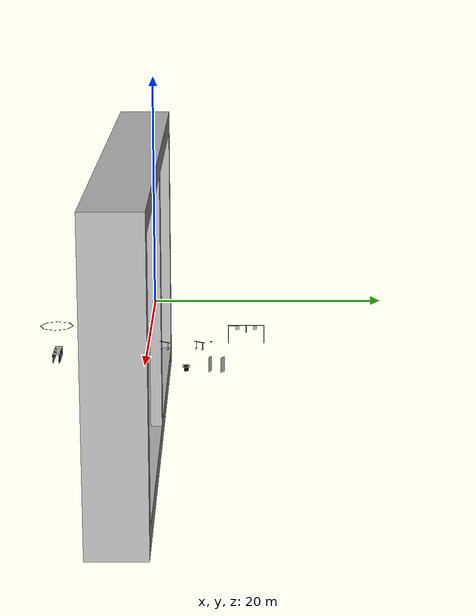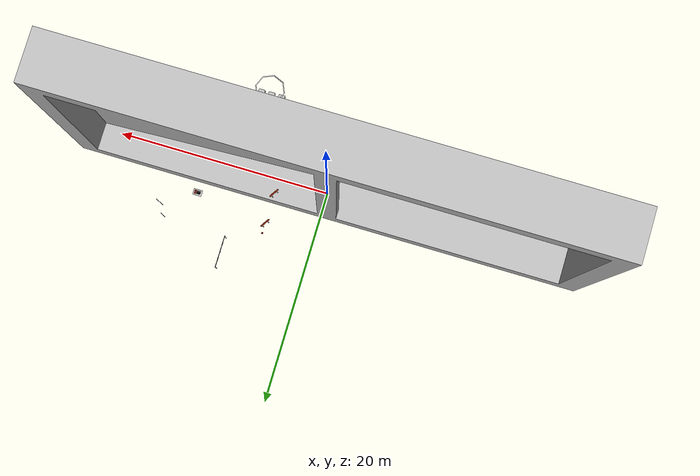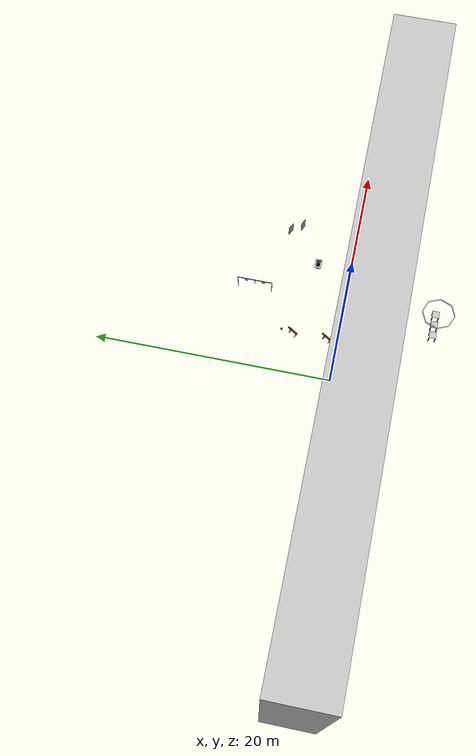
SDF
<sdf version="1.4">
 <world name="umd">
  <physics name="default_physics" default="true" type="ode">
   <max_step_size>0.002</max_step_size>
   <real_time_factor>1</real_time_factor>
   <real_time_update_rate>500</real_time_update_rate>
  </physics>
  <scene>
   <ambient>0.5 0.5 0.5 1.0</ambient>
   <sky><clouds><speed>12</speed></clouds></sky>
   <shadows>1</shadows>
   <fog>
    <color>0.1 0.2 0.3 1.0</color>
    <type>linear</type>
    <density>0.1</density>
    <start>1</start>
    <end>40</end>
   </fog>
  </scene>
  <spherical_coordinates>
   <latitude_deg>56.71897669633431</latitude_deg>
   <longitude_deg>3.515625</longitude_deg>
  </spherical_coordinates>
  <light type="directional" name="sun">
   <pose>-50 -50 150 0 0 0</pose>
   <diffuse>0.5 0.5 0.5 1</diffuse>
   <specular>.1 .1 .1 1</specular>
   <direction>0.3 0.3 -1</direction>
   <cast_shadows>false</cast_shadows>
  </light>
  <light type="directional" name="sun_diffuse">
   <pose>-50 0 -150 0 0 0</pose>
   <diffuse>0.6 0.6 0.6 1</diffuse>
   <specular>0 0 0 1</specular>
   <direction>-0.3 -0.3 -1</direction>
   <cast_shadows>false</cast_shadows>
  </light>
  <include><uri>model://umd</uri></include>
  <include><uri>model://gate_24</uri><pose>8 8 -0.1 0 0 3.14</pose></include>
  <include><uri>model://torpedo_target_gman</uri><pose>15 5 -2 0 0 -2</pose></include>
  <include><uri>model://torpedo_target_bootlegger</uri><pose>14.5 6 -2.2 0 0 -2.1</pose></include>
  <include><uri>model://buoy_24</uri><pose>4 -3 -2.2 0 0 0.1</pose></include>
  <include><uri>model://buoy_24</uri><pose>3.5 -4 -2.1 0 0 0.2</pose></include>
  <include><uri>model://path_marker</uri><pose>5 1 -3 0 0 1</pose><name>path_marker_1</name></include>
  <include><uri>model://path_marker</uri><pose>5 4 -3 0 0 1</pose><name>path_marker_2</name></include>
  <include><uri>model://octagon</uri><pose>8 -8 -0.1 0 0 0</pose></include>
  <include><uri>model://cash_table</uri><pose>9 -8 -3 0 0 0</pose></include>
  <include><uri>model://smash_table</uri><pose>7 -8 -3 0 0 0</pose></include>
  <include><uri>model://cash_smash_bin</uri><pose>8 -8 -3 0 0 0</pose></include>
  <include><uri>model://marker_bin</uri><pose>12 3 -2.8 0 0 0</pose></include>
  <include><uri>model://marker_bin_lid</uri><pose>12.2 3 -2.4 0 0 0</pose></include>
  <include><uri>model://chevron</uri><pose>5 5 -2.4 0 0 0</pose></include>
  <plugin name="sc_interface" filename="libuuv_sc_ros_interface_plugin.so"/>
 </world>
</sdf>

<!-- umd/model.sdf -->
<sdf version="1.5">
  <model name="umd">
    <static>true</static>
    <link name="base_link">

      <collision name="collision">
        <pose>0 0 0 0 0 0</pose>
        <geometry>
          <mesh>
            <uri>model://umd/meshes/umd.dae</uri>
          </mesh>
        </geometry>
      </collision>

      <visual name="visual">
        <cast_shadows>true</cast_shadows>
        <pose>0 0 0 0 0 0</pose>
        <geometry>
          <mesh>
            <uri>model://umd/meshes/umd.dae</uri>
          </mesh>
        </geometry>
      </visual>
    </link>
  </model>
</sdf>

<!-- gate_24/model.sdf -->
<sdf version="1.5">
  <model name="gate">
    <static>true</static>
    <link name="base_link">

      <collision name="collision">
        <pose>0 0 0 0 0 0</pose>
        <geometry>
          <mesh>
            <uri>model://gate_24/meshes/gate.dae</uri>
          </mesh>
        </geometry>
      </collision>

      <visual name="visual">
        <cast_shadows>true</cast_shadows>
        <pose>0 0 0 0 0 0</pose>
        <geometry>
          <mesh>
            <uri>model://gate_24/meshes/gate.dae</uri>
          </mesh>
        </geometry>
      </visual>
    </link>
  </model>
</sdf>

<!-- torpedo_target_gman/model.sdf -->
<sdf version="1.5">
  <model name="torpedo_target_gman">
    <static>true</static>
    <link name="base_link">

      <collision name="collision">
        <pose>0 0 0 0 0 0</pose>
        <geometry>
          <mesh>
            <uri>model://torpedo_target_gman/meshes/torpedo_target_gman.dae</uri>
          </mesh>
        </geometry>
      </collision>

      <visual name="visual">
        <cast_shadows>true</cast_shadows>
        <pose>0 0 0 0 0 0</pose>
        <geometry>
          <mesh>
            <uri>model://torpedo_target_gman/meshes/torpedo_target_gman.dae</uri>
          </mesh>
        </geometry>
      </visual>
    </link>
  </model>
</sdf>

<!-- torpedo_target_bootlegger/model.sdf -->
<sdf version="1.5">
  <model name="torpedo_target_bootlegger">
    <static>true</static>
    <link name="base_link">

      <collision name="collision">
        <pose>0 0 0 0 0 0</pose>
        <geometry>
          <mesh>
            <uri>model://torpedo_target_bootlegger/meshes/torpedo_target_bootlegger.dae</uri>
          </mesh>
        </geometry>
      </collision>

      <visual name="visual">
        <cast_shadows>true</cast_shadows>
        <pose>0 0 0 0 0 0</pose>
        <geometry>
          <mesh>
            <uri>model://torpedo_target_bootlegger/meshes/torpedo_target_bootlegger.dae</uri>
          </mesh>
        </geometry>
      </visual>
    </link>
  </model>
</sdf>

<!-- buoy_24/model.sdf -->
<sdf version="1.5">
  <model name="buoy_gun">
    <static>true</static>
    <link name="base_link">

      <collision name="collision">
        <pose>0 0 0 0 0 0</pose>
        <geometry>
          <mesh>
            <uri>model://buoy_24/meshes/buoy_24.dae</uri>
          </mesh>
        </geometry>
      </collision>

      <visual name="visual">
        <cast_shadows>true</cast_shadows>
        <pose>0 0 0 0 0 0</pose>
        <geometry>
          <mesh>
            <uri>model://buoy_24/meshes/buoy_24.dae</uri>
          </mesh>
        </geometry>
      </visual>
    </link>
  </model>
</sdf>

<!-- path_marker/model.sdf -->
<sdf version="1.5">
  <model name="path_marker">
    <static>true</static>
    <link name="base_link">

      <collision name="collision">
        <pose>0 0 0 0 0 0</pose>
        <geometry>
          <mesh>
            <uri>model://path_marker/meshes/path_marker.dae</uri>
          </mesh>
        </geometry>
      </collision>

      <visual name="visual">
        <cast_shadows>true</cast_shadows>
        <pose>0 0 0 0 0 0</pose>
        <geometry>
          <mesh>
            <uri>model://path_marker/meshes/path_marker.dae</uri>
          </mesh>
        </geometry>
      </visual>
    </link>
  </model>
</sdf>

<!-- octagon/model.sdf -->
<sdf version="1.5">
  <model name="octagon">
    <static>true</static>
    <link name="base_link">

      <collision name="collision">
        <pose>0 0 0 0 0 0</pose>
        <geometry>
          <mesh>
            <uri>model://octagon/meshes/octagon.dae</uri>
          </mesh>
        </geometry>
      </collision>

      <visual name="visual">
        <cast_shadows>true</cast_shadows>
        <pose>0 0 0 0 0 0</pose>
        <geometry>
          <mesh>
            <uri>model://octagon/meshes/octagon.dae</uri>
          </mesh>
        </geometry>
      </visual>
    </link>
  </model>
</sdf>

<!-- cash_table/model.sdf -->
<sdf version="1.5">
  <model name="cash_table">
    <static>true</static>
    <link name="base_link">

      <collision name="collision">
        <pose>0 0 0 0 0 0</pose>
        <geometry>
          <mesh>
            <uri>model://cash_table/meshes/cash_table.dae</uri>
          </mesh>
        </geometry>
      </collision>

      <visual name="visual">
        <cast_shadows>true</cast_shadows>
        <pose>0 0 0 0 0 0</pose>
        <geometry>
          <mesh>
            <uri>model://cash_table/meshes/cash_table.dae</uri>
          </mesh>
        </geometry>
      </visual>
    </link>
  </model>
</sdf>

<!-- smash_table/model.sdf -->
<sdf version="1.5">
  <model name="smash_table">
    <static>true</static>
    <link name="base_link">

      <collision name="collision">
        <pose>0 0 0 0 0 0</pose>
        <geometry>
          <mesh>
            <uri>model://smash_table/meshes/smash_table.dae</uri>
          </mesh>
        </geometry>
      </collision>

      <visual name="visual">
        <cast_shadows>true</cast_shadows>
        <pose>0 0 0 0 0 0</pose>
        <geometry>
          <mesh>
            <uri>model://smash_table/meshes/smash_table.dae</uri>
          </mesh>
        </geometry>
      </visual>
    </link>
  </model>
</sdf>

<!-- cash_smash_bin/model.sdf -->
<sdf version="1.5">
  <model name="cash_smash_bin">
    <static>true</static>
    <link name="base_link">

      <collision name="collision">
        <pose>0 0 0 0 0 0</pose>
        <geometry>
          <mesh>
            <uri>model://cash_smash_bin/meshes/cash_smash_bin.dae</uri>
          </mesh>
        </geometry>
      </collision>

      <visual name="visual">
        <cast_shadows>true</cast_shadows>
        <pose>0 0 0 0 0 0</pose>
        <geometry>
          <mesh>
            <uri>model://cash_smash_bin/meshes/cash_smash_bin.dae</uri>
          </mesh>
        </geometry>
      </visual>
    </link>
  </model>
</sdf>

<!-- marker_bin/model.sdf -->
<sdf version="1.5">
  <model name="marker_bin">
    <static>true</static>
    <link name="base_link">

      <collision name="collision">
        <pose>0 0 0 0 0 0</pose>
        <geometry>
          <mesh>
            <uri>model://marker_bin/meshes/marker_bin.dae</uri>
          </mesh>
        </geometry>
      </collision>

      <visual name="visual">
        <cast_shadows>true</cast_shadows>
        <pose>0 0 0 0 0 0</pose>
        <geometry>
          <mesh>
            <uri>model://marker_bin/meshes/marker_bin.dae</uri>
          </mesh>
        </geometry>
      </visual>
    </link>
  </model>
</sdf>

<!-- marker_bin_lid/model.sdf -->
<sdf version="1.5">
  <model name="marker_bin_lid">
    <!-- Sub should be able to move marker bin lid -->
    <static>false</static>
    <link name="base_link">

      <inertial>
        <mass>1.0</mass>
        <inertia> <!-- inertias are tricky to compute -->
          <!-- http://gazebosim.org/tutorials?tut=inertia&cat=build_robot -->
          <ixx>0.083</ixx>       <!-- for a box: ixx = 0.083 * mass * (y*y + z*z) -->
          <ixy>0.0</ixy>         <!-- for a box: ixy = 0 -->
          <ixz>0.0</ixz>         <!-- for a box: ixz = 0 -->
          <iyy>0.083</iyy>       <!-- for a box: iyy = 0.083 * mass * (x*x + z*z) -->
          <iyz>0.0</iyz>         <!-- for a box: iyz = 0 -->
          <izz>0.083</izz>       <!-- for a box: izz = 0.083 * mass * (x*x + y*y) -->
        </inertia>
      </inertial>

      <collision name="collision">
        <pose>0 0 0 0 0 0</pose>
        <geometry>
          <mesh>
            <uri>model://marker_bin_lid/meshes/marker_bin_lid.dae</uri>
          </mesh>
        </geometry>
      </collision>

      <visual name="visual">
        <cast_shadows>true</cast_shadows>
        <pose>0 0 0 0 0 0</pose>
        <geometry>
          <mesh>
            <uri>model://marker_bin_lid/meshes/marker_bin_lid.dae</uri>
          </mesh>
        </geometry>
      </visual>
    </link>
  </model>
</sdf>

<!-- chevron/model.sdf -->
<sdf version="1.5">
  <model name="chevron">
    <static>false</static>
    <link name="base_link">

      <collision name="collision">
        <pose>0 0 0 0 0 0</pose>
        <geometry>
          <mesh>
            <uri>model://chevron/meshes/chevron.dae</uri>
          </mesh>
        </geometry>
      </collision>

      <visual name="visual">
        <cast_shadows>true</cast_shadows>
        <pose>0 0 0 0 0 0</pose>
        <geometry>
          <mesh>
            <uri>model://chevron/meshes/chevron.dae</uri>
          </mesh>
        </geometry>
      </visual>
    </link>
  </model>
</sdf>
